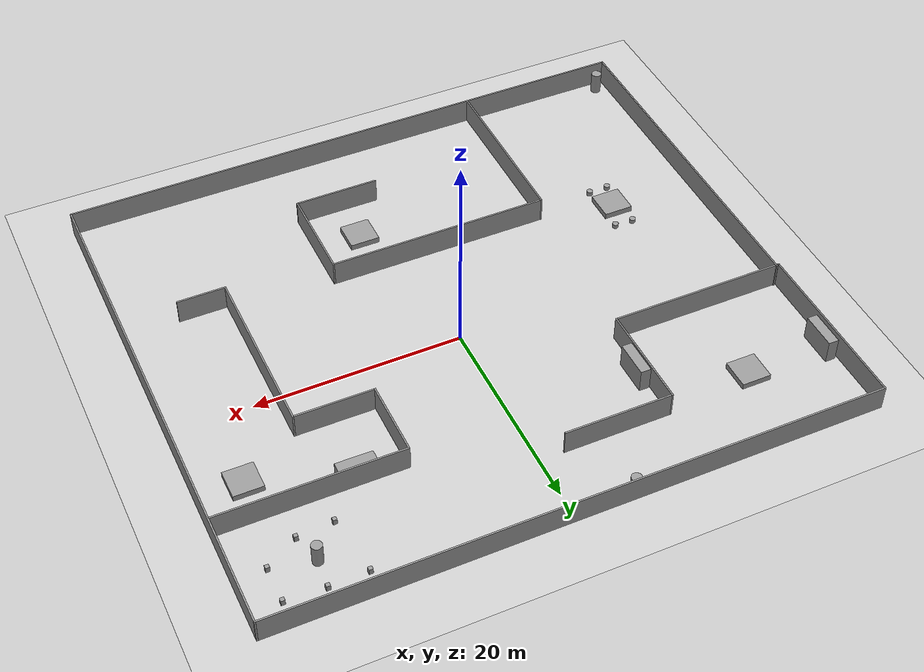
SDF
<sdf version="1.7">
 <world name="default">
  <light name="sun" type="directional">
   <pose>0 0 10 0 -0 0</pose>
   <diffuse>0.8 0.8 0.8 1</diffuse>
   <specular>0.2 0.2 0.2 1</specular>
   <attenuation>
    <range>1000</range>
    <constant>0.9</constant>
    <linear>0.01</linear>
    <quadratic>0.001</quadratic>
   </attenuation>
   <direction>-0.5 0.1 -0.9</direction>
   <spot><inner_angle>0</inner_angle><outer_angle>0</outer_angle><falloff>0</falloff></spot>
  </light>
  <model name="ground_plane">
   <static>1</static>
   <link name="link">
    <collision name="collision">
     <geometry><plane><normal>0 0 1</normal><size>100 100</size></plane></geometry>
     <surface><friction><ode><mu>100</mu><mu2>50</mu2></ode></friction></surface>
    </collision>
    <visual name="visual">
     <cast_shadows>0</cast_shadows>
     <geometry><plane><normal>0 0 1</normal><size>100 100</size></plane></geometry>
     <material>
      <script><uri>file://media/materials/scripts/gazebo.material</uri><name>Gazebo/Grey</name></script>
     </material>
    </visual>
   </link>
  </model>
  <gravity>0 0 -9.8</gravity>
  <magnetic_field>6e-06 2.3e-05 -4.2e-05</magnetic_field>
  <atmosphere type="adiabatic"/>
  <physics type="ode">
   <max_step_size>0.001</max_step_size>
   <real_time_factor>1</real_time_factor>
   <real_time_update_rate>1000</real_time_update_rate>
  </physics>
  <scene><ambient>0.4 0.4 0.4 1</ambient><background>0.7 0.7 0.7 1</background><shadows>1</shadows></scene>
  <audio><device>default</device></audio>
  <spherical_coordinates>
   <surface_model>EARTH_WGS84</surface_model>
   <latitude_deg>0</latitude_deg>
   <longitude_deg>0</longitude_deg>
   <elevation>0</elevation>
   <heading_deg>0</heading_deg>
  </spherical_coordinates>
  <model name="3room">
   <pose>-0.940497 -2.71862 0 0 -0 0</pose>
   <link name="Wall_0">
    <collision name="Wall_0_Collision">
     <geometry><box><size>34.5 0.15 2.5</size></box></geometry>
     <pose>0 0 1.25 0 -0 0</pose>
    </collision>
    <visual name="Wall_0_Visual">
     <pose>0 0 1.25 0 -0 0</pose>
     <geometry><box><size>34.5 0.15 2.5</size></box></geometry>
     <material>
      <script><uri>file://media/materials/scripts/gazebo.material</uri><name>Gazebo/Grey</name></script>
      <ambient>1 1 1 1</ambient>
     </material>
     <meta><layer>0</layer></meta>
    </visual>
    <pose>-28.675 -8.5 0 0 -0 -1.5708</pose>
   </link>
   <link name="Wall_1">
    <collision name="Wall_1_Collision">
     <geometry><box><size>57.75 0.15 2.5</size></box></geometry>
     <pose>0 0 1.25 0 -0 0</pose>
    </collision>
    <visual name="Wall_1_Visual">
     <pose>0 0 1.25 0 -0 0</pose>
     <geometry><box><size>57.75 0.15 2.5</size></box></geometry>
     <material>
      <script><uri>file://media/materials/scripts/gazebo.material</uri><name>Gazebo/Grey</name></script>
      <ambient>1 1 1 1</ambient>
     </material>
     <meta><layer>0</layer></meta>
    </visual>
    <pose>0.124999 -25.675 0 0 -0 0</pose>
   </link>
   <link name="Wall_10">
    <collision name="Wall_10_Collision">
     <geometry><box><size>21.75 0.15 2.5</size></box></geometry>
     <pose>0 0 1.25 0 -0 0</pose>
    </collision>
    <visual name="Wall_10_Visual">
     <pose>0 0 1.25 0 -0 0</pose>
     <geometry><box><size>21.75 0.15 2.5</size></box></geometry>
     <material>
      <script><uri>file://media/materials/scripts/gazebo.material</uri><name>Gazebo/Grey</name></script>
      <ambient>1 1 1 1</ambient>
     </material>
     <meta><layer>0</layer></meta>
    </visual>
    <pose>-2.14326 -8.72463 0 0 -0 0</pose>
   </link>
   <link name="Wall_11">
    <collision name="Wall_11_Collision">
     <geometry><box><size>9.5 0.15 2.5</size></box></geometry>
     <pose>0 0 1.25 0 -0 0</pose>
    </collision>
    <visual name="Wall_11_Visual">
     <pose>0 0 1.25 0 -0 0</pose>
     <geometry><box><size>9.5 0.15 2.5</size></box></geometry>
     <material>
      <script><uri>file://media/materials/scripts/gazebo.material</uri><name>Gazebo/Grey</name></script>
      <ambient>1 1 1 1</ambient>
     </material>
     <meta><layer>0</layer></meta>
    </visual>
    <pose>8.65674 -13.3996 0 0 -0 -1.5708</pose>
   </link>
   <link name="Wall_12">
    <collision name="Wall_12_Collision">
     <geometry><box><size>8.25 0.15 2.5</size></box></geometry>
     <pose>0 0 1.25 0 -0 0</pose>
    </collision>
    <visual name="Wall_12_Visual">
     <pose>0 0 1.25 0 -0 0</pose>
     <geometry><box><size>8.25 0.15 2.5</size></box></geometry>
     <material>
      <script><uri>file://media/materials/scripts/gazebo.material</uri><name>Gazebo/Grey</name></script>
      <ambient>1 1 1 1</ambient>
     </material>
     <meta><layer>0</layer></meta>
    </visual>
    <pose>4.60674 -18.0746 0 0 -0 3.14159</pose>
   </link>
   <link name="Wall_14">
    <collision name="Wall_14_Collision">
     <geometry><box><size>17.75 0.15 2.5</size></box></geometry>
     <pose>0 0 1.25 0 -0 0</pose>
    </collision>
    <visual name="Wall_14_Visual">
     <pose>0 0 1.25 0 -0 0</pose>
     <geometry><box><size>17.75 0.15 2.5</size></box></geometry>
     <material>
      <script><uri>file://media/materials/scripts/gazebo.material</uri><name>Gazebo/Grey</name></script>
      <ambient>1 1 1 1</ambient>
     </material>
     <meta><layer>0</layer></meta>
    </visual>
    <pose>20.0104 14.6725 0 0 -0 3.14159</pose>
   </link>
   <link name="Wall_15">
    <collision name="Wall_15_Collision">
     <geometry><box><size>7.5 0.15 2.5</size></box></geometry>
     <pose>0 0 1.25 0 -0 0</pose>
    </collision>
    <visual name="Wall_15_Visual">
     <pose>0 0 1.25 0 -0 0</pose>
     <geometry><box><size>7.5 0.15 2.5</size></box></geometry>
     <material>
      <script><uri>file://media/materials/scripts/gazebo.material</uri><name>Gazebo/Grey</name></script>
      <ambient>1 1 1 1</ambient>
     </material>
     <meta><layer>0</layer></meta>
    </visual>
    <pose>11.2104 10.9975 0 0 -0 -1.5708</pose>
   </link>
   <link name="Wall_16">
    <collision name="Wall_16_Collision">
     <geometry><box><size>7.75 0.15 2.5</size></box></geometry>
     <pose>0 0 1.25 0 -0 0</pose>
    </collision>
    <visual name="Wall_16_Visual">
     <pose>0 0 1.25 0 -0 0</pose>
     <geometry><box><size>7.75 0.15 2.5</size></box></geometry>
     <material>
      <script><uri>file://media/materials/scripts/gazebo.material</uri><name>Gazebo/Grey</name></script>
      <ambient>1 1 1 1</ambient>
     </material>
     <meta><layer>0</layer></meta>
    </visual>
    <pose>15.0104 7.32249 0 0 -0 0</pose>
   </link>
   <link name="Wall_17">
    <collision name="Wall_17_Collision">
     <geometry><box><size>17.5 0.15 2.5</size></box></geometry>
     <pose>0 0 1.25 0 -0 0</pose>
    </collision>
    <visual name="Wall_17_Visual">
     <pose>0 0 1.25 0 -0 0</pose>
     <geometry><box><size>17.5 0.15 2.5</size></box></geometry>
     <material>
      <script><uri>file://media/materials/scripts/gazebo.material</uri><name>Gazebo/Grey</name></script>
      <ambient>1 1 1 1</ambient>
     </material>
     <meta><layer>0</layer></meta>
    </visual>
    <pose>18.8104 -1.3525 0 0 -0 -1.5708</pose>
   </link>
   <link name="Wall_18">
    <collision name="Wall_18_Collision">
     <geometry><box><size>4.75 0.15 2.5</size></box></geometry>
     <pose>0 0 1.25 0 -0 0</pose>
    </collision>
    <visual name="Wall_18_Visual">
     <pose>0 0 1.25 0 -0 0</pose>
     <geometry><box><size>4.75 0.15 2.5</size></box></geometry>
     <material>
      <script><uri>file://media/materials/scripts/gazebo.material</uri><name>Gazebo/Grey</name></script>
      <ambient>1 1 1 1</ambient>
     </material>
     <meta><layer>0</layer></meta>
    </visual>
    <pose>21.1104 -10.0275 0 0 -0 0</pose>
   </link>
   <link name="Wall_2">
    <collision name="Wall_2_Collision">
     <geometry><box><size>51.5 0.15 2.5</size></box></geometry>
     <pose>0 0 1.25 0 -0 0</pose>
    </collision>
    <visual name="Wall_2_Visual">
     <pose>0 0 1.25 0 -0 0</pose>
     <geometry><box><size>51.5 0.15 2.5</size></box></geometry>
     <material>
      <script><uri>file://media/materials/scripts/gazebo.material</uri><name>Gazebo/Grey</name></script>
      <ambient>1 1 1 1</ambient>
     </material>
     <meta><layer>0</layer></meta>
    </visual>
    <pose>28.925 0 0 0 -0 1.5708</pose>
   </link>
   <link name="Wall_3">
    <collision name="Wall_3_Collision">
     <geometry><box><size>58 0.15 2.5</size></box></geometry>
     <pose>0 0 1.25 0 -0 0</pose>
    </collision>
    <visual name="Wall_3_Visual">
     <pose>0 0 1.25 0 -0 0</pose>
     <geometry><box><size>58 0.15 2.5</size></box></geometry>
     <material>
      <script><uri>file://media/materials/scripts/gazebo.material</uri><name>Gazebo/Grey</name></script>
      <ambient>1 1 1 1</ambient>
     </material>
     <meta><layer>0</layer></meta>
    </visual>
    <pose>-1e-06 25.675 0 0 -0 3.14159</pose>
   </link>
   <link name="Wall_4">
    <collision name="Wall_4_Collision">
     <geometry><box><size>17.25 0.15 2.5</size></box></geometry>
     <pose>0 0 1.25 0 -0 0</pose>
    </collision>
    <visual name="Wall_4_Visual">
     <pose>0 0 1.25 0 -0 0</pose>
     <geometry><box><size>17.25 0.15 2.5</size></box></geometry>
     <material>
      <script><uri>file://media/materials/scripts/gazebo.material</uri><name>Gazebo/Grey</name></script>
      <ambient>1 1 1 1</ambient>
     </material>
     <meta><layer>0</layer></meta>
    </visual>
    <pose>-28.925 17.125 0 0 -0 -1.5708</pose>
   </link>
   <link name="Wall_5">
    <collision name="Wall_5_Collision">
     <geometry><box><size>17.25 0.15 2.5</size></box></geometry>
     <pose>0 0 1.25 0 -0 0</pose>
    </collision>
    <visual name="Wall_5_Visual">
     <pose>0 0 1.25 0 -0 0</pose>
     <geometry><box><size>17.25 0.15 2.5</size></box></geometry>
     <material>
      <script><uri>file://media/materials/scripts/gazebo.material</uri><name>Gazebo/Grey</name></script>
      <ambient>1 1 1 1</ambient>
     </material>
     <meta><layer>0</layer></meta>
    </visual>
    <pose>-20.375 8.575 0 0 -0 0</pose>
   </link>
   <link name="Wall_6">
    <collision name="Wall_6_Collision">
     <geometry><box><size>10.25 0.15 2.5</size></box></geometry>
     <pose>0 0 1.25 0 -0 0</pose>
    </collision>
    <visual name="Wall_6_Visual">
     <pose>0 0 1.25 0 -0 0</pose>
     <geometry><box><size>10.25 0.15 2.5</size></box></geometry>
     <material>
      <script><uri>file://media/materials/scripts/gazebo.material</uri><name>Gazebo/Grey</name></script>
      <ambient>1 1 1 1</ambient>
     </material>
     <meta><layer>0</layer></meta>
    </visual>
    <pose>-11.825 13.625 0 0 -0 1.5708</pose>
   </link>
   <link name="Wall_7">
    <collision name="Wall_7_Collision">
     <geometry><box><size>10.5 0.15 2.5</size></box></geometry>
     <pose>0 0 1.25 0 -0 0</pose>
    </collision>
    <visual name="Wall_7_Visual">
     <pose>0 0 1.25 0 -0 0</pose>
     <geometry><box><size>10.5 0.15 2.5</size></box></geometry>
     <material>
      <script><uri>file://media/materials/scripts/gazebo.material</uri><name>Gazebo/Grey</name></script>
      <ambient>1 1 1 1</ambient>
     </material>
     <meta><layer>0</layer></meta>
    </visual>
    <pose>-6.65 18.675 0 0 -0 0</pose>
   </link>
   <link name="Wall_9">
    <collision name="Wall_9_Collision">
     <geometry><box><size>17 0.15 2.5</size></box></geometry>
     <pose>0 0 1.25 0 -0 0</pose>
    </collision>
    <visual name="Wall_9_Visual">
     <pose>0 0 1.25 0 -0 0</pose>
     <geometry><box><size>17 0.15 2.5</size></box></geometry>
     <material>
      <script><uri>file://media/materials/scripts/gazebo.material</uri><name>Gazebo/Grey</name></script>
      <ambient>1 1 1 1</ambient>
     </material>
     <meta><layer>0</layer></meta>
    </visual>
    <pose>-12.9433 -17.1496 0 0 -0 1.5708</pose>
   </link>
   <static>1</static>
  </model>
  <model name="square_box">
   <link name="link_0">
    <inertial>
     <mass>8.22012</mass>
     <inertia><ixx>6.36655</ixx><ixy>0</ixy><ixz>0</ixz><iyy>6.26556</iyy><iyz>0</iyz><izz>11.2621</izz></inertia>
    </inertial>
    <pose>2e-06 -4e-06 0 0 -0 0</pose>
    <visual name="visual">
     <geometry><box><size>2.85424 2.87995 1</size></box></geometry>
     <material>
      <lighting>1</lighting>
      <script><uri>file://media/materials/scripts/gazebo.material</uri><name>Gazebo/Grey</name></script>
      <shader type="pixel"/>
     </material>
    </visual>
    <collision name="collision">
     <geometry><box><size>2.85424 2.87995 1</size></box></geometry>
     <surface>
      <friction>
       <ode><mu>1</mu><mu2>1</mu2><fdir1>0 0 0</fdir1><slip1>0</slip1><slip2>0</slip2></ode>
       <torsional>
        <coefficient>1</coefficient>
        <patch_radius>0</patch_radius>
        <surface_radius>0</surface_radius>
        <use_patch_radius>1</use_patch_radius>
        <ode><slip>0</slip></ode>
       </torsional>
      </friction>
      <bounce><restitution_coefficient>0</restitution_coefficient><threshold>1e+06</threshold></bounce>
      <contact>
       <collide_without_contact>0</collide_without_contact>
       <collide_without_contact_bitmask>1</collide_without_contact_bitmask>
       <collide_bitmask>1</collide_bitmask>
       <ode>
        <soft_cfm>0</soft_cfm>
        <soft_erp>0.2</soft_erp>
        <kp>1e+13</kp>
        <kd>1</kd>
        <max_vel>0.01</max_vel>
        <min_depth>0</min_depth>
       </ode>
       <bullet>
        <split_impulse>1</split_impulse>
        <split_impulse_penetration_threshold>-0.01</split_impulse_penetration_threshold>
        <soft_cfm>0</soft_cfm>
        <soft_erp>0.2</soft_erp>
        <kp>1e+13</kp>
        <kd>1</kd>
       </bullet>
      </contact>
     </surface>
    </collision>
   </link>
   <static>0</static>
   <pose>3.08811 -16.5201 0 0 -0 0</pose>
  </model>
  <model name="square_box_0">
   <link name="link_0">
    <inertial>
     <mass>8.22012</mass>
     <inertia><ixx>6.36655</ixx><ixy>0</ixy><ixz>0</ixz><iyy>6.26556</iyy><iyz>0</iyz><izz>11.2621</izz></inertia>
    </inertial>
    <pose>2e-06 -4e-06 0 0 -0 0</pose>
    <visual name="visual">
     <geometry><box><size>2.85424 2.87995 1</size></box></geometry>
     <material>
      <lighting>1</lighting>
      <script><uri>file://media/materials/scripts/gazebo.material</uri><name>Gazebo/Grey</name></script>
      <shader type="pixel"/>
     </material>
    </visual>
    <collision name="collision">
     <geometry><box><size>2.85424 2.87995 1</size></box></geometry>
     <surface>
      <friction>
       <ode><mu>1</mu><mu2>1</mu2><fdir1>0 0 0</fdir1><slip1>0</slip1><slip2>0</slip2></ode>
       <torsional>
        <coefficient>1</coefficient>
        <patch_radius>0</patch_radius>
        <surface_radius>0</surface_radius>
        <use_patch_radius>1</use_patch_radius>
        <ode><slip>0</slip></ode>
       </torsional>
      </friction>
      <bounce><restitution_coefficient>0</restitution_coefficient><threshold>1e+06</threshold></bounce>
      <contact>
       <collide_without_contact>0</collide_without_contact>
       <collide_without_contact_bitmask>1</collide_without_contact_bitmask>
       <collide_bitmask>1</collide_bitmask>
       <ode>
        <soft_cfm>0</soft_cfm>
        <soft_erp>0.2</soft_erp>
        <kp>1e+13</kp>
        <kd>1</kd>
        <max_vel>0.01</max_vel>
        <min_depth>0</min_depth>
       </ode>
       <bullet>
        <split_impulse>1</split_impulse>
        <split_impulse_penetration_threshold>-0.01</split_impulse_penetration_threshold>
        <soft_cfm>0</soft_cfm>
        <soft_erp>0.2</soft_erp>
        <kp>1e+13</kp>
        <kd>1</kd>
       </bullet>
      </contact>
     </surface>
    </collision>
   </link>
   <static>0</static>
   <pose>-21.4986 14.6311 0 0 -0 0</pose>
  </model>
  <model name="square_box_1">
   <link name="link_0">
    <inertial>
     <mass>8.22012</mass>
     <inertia><ixx>6.36655</ixx><ixy>0</ixy><ixz>0</ixz><iyy>6.26556</iyy><iyz>0</iyz><izz>11.2621</izz></inertia>
    </inertial>
    <pose>2e-06 -4e-06 0 0 -0 0</pose>
    <visual name="visual">
     <geometry><box><size>2.85424 2.87995 1</size></box></geometry>
     <material>
      <lighting>1</lighting>
      <script><uri>file://media/materials/scripts/gazebo.material</uri><name>Gazebo/Grey</name></script>
      <shader type="pixel"/>
     </material>
    </visual>
    <collision name="collision">
     <geometry><box><size>2.85424 2.87995 1</size></box></geometry>
     <surface>
      <friction>
       <ode><mu>1</mu><mu2>1</mu2><fdir1>0 0 0</fdir1><slip1>0</slip1><slip2>0</slip2></ode>
       <torsional>
        <coefficient>1</coefficient>
        <patch_radius>0</patch_radius>
        <surface_radius>0</surface_radius>
        <use_patch_radius>1</use_patch_radius>
        <ode><slip>0</slip></ode>
       </torsional>
      </friction>
      <bounce><restitution_coefficient>0</restitution_coefficient><threshold>1e+06</threshold></bounce>
      <contact>
       <collide_without_contact>0</collide_without_contact>
       <collide_without_contact_bitmask>1</collide_without_contact_bitmask>
       <collide_bitmask>1</collide_bitmask>
       <ode>
        <soft_cfm>0</soft_cfm>
        <soft_erp>0.2</soft_erp>
        <kp>1e+13</kp>
        <kd>1</kd>
        <max_vel>0.01</max_vel>
        <min_depth>0</min_depth>
       </ode>
       <bullet>
        <split_impulse>1</split_impulse>
        <split_impulse_penetration_threshold>-0.01</split_impulse_penetration_threshold>
        <soft_cfm>0</soft_cfm>
        <soft_erp>0.2</soft_erp>
        <kp>1e+13</kp>
        <kd>1</kd>
       </bullet>
      </contact>
     </surface>
    </collision>
   </link>
   <static>0</static>
   <pose>23.6451 7.70959 0 0 -0 0</pose>
  </model>
  <model name="cupboard">
   <link name="link_2">
    <inertial>
     <mass>16.0018</mass>
     <inertia><ixx>44.0904</ixx><ixy>0</ixy><ixz>0</ixz><iyy>28.9167</iyy><iyz>0</iyz><izz>17.8407</izz></inertia>
    </inertial>
    <pose>-1e-06 1e-06 0 0 -0 0</pose>
    <visual name="visual">
     <geometry><box><size>1 3.51838 4.54807</size></box></geometry>
     <material>
      <lighting>1</lighting>
      <script><uri>file://media/materials/scripts/gazebo.material</uri><name>Gazebo/Grey</name></script>
      <shader type="pixel"/>
     </material>
    </visual>
    <collision name="collision">
     <geometry><box><size>1 3.51838 4.54807</size></box></geometry>
     <surface>
      <friction>
       <ode><mu>1</mu><mu2>1</mu2><fdir1>0 0 0</fdir1><slip1>0</slip1><slip2>0</slip2></ode>
       <torsional>
        <coefficient>1</coefficient>
        <patch_radius>0</patch_radius>
        <surface_radius>0</surface_radius>
        <use_patch_radius>1</use_patch_radius>
        <ode><slip>0</slip></ode>
       </torsional>
      </friction>
      <bounce><restitution_coefficient>0</restitution_coefficient><threshold>1e+06</threshold></bounce>
      <contact>
       <collide_without_contact>0</collide_without_contact>
       <collide_without_contact_bitmask>1</collide_without_contact_bitmask>
       <collide_bitmask>1</collide_bitmask>
       <ode>
        <soft_cfm>0</soft_cfm>
        <soft_erp>0.2</soft_erp>
        <kp>1e+13</kp>
        <kd>1</kd>
        <max_vel>0.01</max_vel>
        <min_depth>0</min_depth>
       </ode>
       <bullet>
        <split_impulse>1</split_impulse>
        <split_impulse_penetration_threshold>-0.01</split_impulse_penetration_threshold>
        <soft_cfm>0</soft_cfm>
        <soft_erp>0.2</soft_erp>
        <kp>1e+13</kp>
        <kd>1</kd>
       </bullet>
      </contact>
     </surface>
    </collision>
   </link>
   <static>0</static>
   <pose>-29.0786 14.5496 0 0 -0 0</pose>
  </model>
  <model name="stand">
   <link name="link_4">
    <inertial>
     <mass>0.138887</mass>
     <inertia>
      <ixx>0.0130983</ixx>
      <ixy>0</ixy>
      <ixz>0</ixz>
      <iyy>0.0132692</iyy>
      <iyz>0</iyz>
      <izz>0.0032197</izz>
     </inertia>
    </inertial>
    <pose>1e-06 5e-06 0 0 -0 0</pose>
    <visual name="visual">
     <geometry><box><size>0.382719 0.362923 1</size></box></geometry>
     <material>
      <lighting>1</lighting>
      <script><uri>file://media/materials/scripts/gazebo.material</uri><name>Gazebo/Grey</name></script>
      <shader type="pixel"/>
     </material>
    </visual>
    <collision name="collision">
     <geometry><box><size>0.382719 0.362923 1</size></box></geometry>
     <surface>
      <friction>
       <ode><mu>1</mu><mu2>1</mu2><fdir1>0 0 0</fdir1><slip1>0</slip1><slip2>0</slip2></ode>
       <torsional>
        <coefficient>1</coefficient>
        <patch_radius>0</patch_radius>
        <surface_radius>0</surface_radius>
        <use_patch_radius>1</use_patch_radius>
        <ode><slip>0</slip></ode>
       </torsional>
      </friction>
      <bounce><restitution_coefficient>0</restitution_coefficient><threshold>1e+06</threshold></bounce>
      <contact>
       <collide_without_contact>0</collide_without_contact>
       <collide_without_contact_bitmask>1</collide_without_contact_bitmask>
       <collide_bitmask>1</collide_bitmask>
       <ode>
        <soft_cfm>0</soft_cfm>
        <soft_erp>0.2</soft_erp>
        <kp>1e+13</kp>
        <kd>1</kd>
        <max_vel>0.01</max_vel>
        <min_depth>0</min_depth>
       </ode>
       <bullet>
        <split_impulse>1</split_impulse>
        <split_impulse_penetration_threshold>-0.01</split_impulse_penetration_threshold>
        <soft_cfm>0</soft_cfm>
        <soft_erp>0.2</soft_erp>
        <kp>1e+13</kp>
        <kd>1</kd>
       </bullet>
      </contact>
     </surface>
    </collision>
   </link>
   <static>0</static>
   <pose>24.9549 20.502 0 0 -0 0</pose>
  </model>
  <model name="stand_0">
   <link name="link_4">
    <inertial>
     <mass>0.138887</mass>
     <inertia>
      <ixx>0.0130983</ixx>
      <ixy>0</ixy>
      <ixz>0</ixz>
      <iyy>0.0132692</iyy>
      <iyz>0</iyz>
      <izz>0.0032197</izz>
     </inertia>
    </inertial>
    <pose>1e-06 5e-06 0 0 -0 0</pose>
    <visual name="visual">
     <geometry><box><size>0.382719 0.362923 1</size></box></geometry>
     <material>
      <lighting>1</lighting>
      <script><uri>file://media/materials/scripts/gazebo.material</uri><name>Gazebo/Grey</name></script>
      <shader type="pixel"/>
     </material>
    </visual>
    <collision name="collision">
     <geometry><box><size>0.382719 0.362923 1</size></box></geometry>
     <surface>
      <friction>
       <ode><mu>1</mu><mu2>1</mu2><fdir1>0 0 0</fdir1><slip1>0</slip1><slip2>0</slip2></ode>
       <torsional>
        <coefficient>1</coefficient>
        <patch_radius>0</patch_radius>
        <surface_radius>0</surface_radius>
        <use_patch_radius>1</use_patch_radius>
        <ode><slip>0</slip></ode>
       </torsional>
      </friction>
      <bounce><restitution_coefficient>0</restitution_coefficient><threshold>1e+06</threshold></bounce>
      <contact>
       <collide_without_contact>0</collide_without_contact>
       <collide_without_contact_bitmask>1</collide_without_contact_bitmask>
       <collide_bitmask>1</collide_bitmask>
       <ode>
        <soft_cfm>0</soft_cfm>
        <soft_erp>0.2</soft_erp>
        <kp>1e+13</kp>
        <kd>1</kd>
        <max_vel>0.01</max_vel>
        <min_depth>0</min_depth>
       </ode>
       <bullet>
        <split_impulse>1</split_impulse>
        <split_impulse_penetration_threshold>-0.01</split_impulse_penetration_threshold>
        <soft_cfm>0</soft_cfm>
        <soft_erp>0.2</soft_erp>
        <kp>1e+13</kp>
        <kd>1</kd>
       </bullet>
      </contact>
     </surface>
    </collision>
   </link>
   <static>0</static>
   <pose>24.9489 16.9917 0 0 -0 0</pose>
  </model>
  <model name="stand_1">
   <link name="link_4">
    <inertial>
     <mass>0.138887</mass>
     <inertia>
      <ixx>0.0130983</ixx>
      <ixy>0</ixy>
      <ixz>0</ixz>
      <iyy>0.0132692</iyy>
      <iyz>0</iyz>
      <izz>0.0032197</izz>
     </inertia>
    </inertial>
    <pose>1e-06 5e-06 0 0 -0 0</pose>
    <visual name="visual">
     <geometry><box><size>0.382719 0.362923 1</size></box></geometry>
     <material>
      <lighting>1</lighting>
      <script><uri>file://media/materials/scripts/gazebo.material</uri><name>Gazebo/Grey</name></script>
      <shader type="pixel"/>
     </material>
    </visual>
    <collision name="collision">
     <geometry><box><size>0.382719 0.362923 1</size></box></geometry>
     <surface>
      <friction>
       <ode><mu>1</mu><mu2>1</mu2><fdir1>0 0 0</fdir1><slip1>0</slip1><slip2>0</slip2></ode>
       <torsional>
        <coefficient>1</coefficient>
        <patch_radius>0</patch_radius>
        <surface_radius>0</surface_radius>
        <use_patch_radius>1</use_patch_radius>
        <ode><slip>0</slip></ode>
       </torsional>
      </friction>
      <bounce><restitution_coefficient>0</restitution_coefficient><threshold>1e+06</threshold></bounce>
      <contact>
       <collide_without_contact>0</collide_without_contact>
       <collide_without_contact_bitmask>1</collide_without_contact_bitmask>
       <collide_bitmask>1</collide_bitmask>
       <ode>
        <soft_cfm>0</soft_cfm>
        <soft_erp>0.2</soft_erp>
        <kp>1e+13</kp>
        <kd>1</kd>
        <max_vel>0.01</max_vel>
        <min_depth>0</min_depth>
       </ode>
       <bullet>
        <split_impulse>1</split_impulse>
        <split_impulse_penetration_threshold>-0.01</split_impulse_penetration_threshold>
        <soft_cfm>0</soft_cfm>
        <soft_erp>0.2</soft_erp>
        <kp>1e+13</kp>
        <kd>1</kd>
       </bullet>
      </contact>
     </surface>
    </collision>
   </link>
   <static>0</static>
   <pose>21.7528 15.0473 0 0 -0 0</pose>
  </model>
  <model name="stand_2">
   <link name="link_4">
    <inertial>
     <mass>0.138887</mass>
     <inertia>
      <ixx>0.0130983</ixx>
      <ixy>0</ixy>
      <ixz>0</ixz>
      <iyy>0.0132692</iyy>
      <iyz>0</iyz>
      <izz>0.0032197</izz>
     </inertia>
    </inertial>
    <pose>1e-06 5e-06 0 0 -0 0</pose>
    <visual name="visual">
     <geometry><box><size>0.382719 0.362923 1</size></box></geometry>
     <material>
      <lighting>1</lighting>
      <script><uri>file://media/materials/scripts/gazebo.material</uri><name>Gazebo/Grey</name></script>
      <shader type="pixel"/>
     </material>
    </visual>
    <collision name="collision">
     <geometry><box><size>0.382719 0.362923 1</size></box></geometry>
     <surface>
      <friction>
       <ode><mu>1</mu><mu2>1</mu2><fdir1>0 0 0</fdir1><slip1>0</slip1><slip2>0</slip2></ode>
       <torsional>
        <coefficient>1</coefficient>
        <patch_radius>0</patch_radius>
        <surface_radius>0</surface_radius>
        <use_patch_radius>1</use_patch_radius>
        <ode><slip>0</slip></ode>
       </torsional>
      </friction>
      <bounce><restitution_coefficient>0</restitution_coefficient><threshold>1e+06</threshold></bounce>
      <contact>
       <collide_without_contact>0</collide_without_contact>
       <collide_without_contact_bitmask>1</collide_without_contact_bitmask>
       <collide_bitmask>1</collide_bitmask>
       <ode>
        <soft_cfm>0</soft_cfm>
        <soft_erp>0.2</soft_erp>
        <kp>1e+13</kp>
        <kd>1</kd>
        <max_vel>0.01</max_vel>
        <min_depth>0</min_depth>
       </ode>
       <bullet>
        <split_impulse>1</split_impulse>
        <split_impulse_penetration_threshold>-0.01</split_impulse_penetration_threshold>
        <soft_cfm>0</soft_cfm>
        <soft_erp>0.2</soft_erp>
        <kp>1e+13</kp>
        <kd>1</kd>
       </bullet>
      </contact>
     </surface>
    </collision>
   </link>
   <static>0</static>
   <pose>18.2341 14.776 0 0 -0 0</pose>
  </model>
  <model name="stand_3">
   <link name="link_4">
    <inertial>
     <mass>0.138887</mass>
     <inertia>
      <ixx>0.0130983</ixx>
      <ixy>0</ixy>
      <ixz>0</ixz>
      <iyy>0.0132692</iyy>
      <iyz>0</iyz>
      <izz>0.0032197</izz>
     </inertia>
    </inertial>
    <pose>1e-06 5e-06 0 0 -0 0</pose>
    <visual name="visual">
     <geometry><box><size>0.382719 0.362923 1</size></box></geometry>
     <material>
      <lighting>1</lighting>
      <script><uri>file://media/materials/scripts/gazebo.material</uri><name>Gazebo/Grey</name></script>
      <shader type="pixel"/>
     </material>
    </visual>
    <collision name="collision">
     <geometry><box><size>0.382719 0.362923 1</size></box></geometry>
     <surface>
      <friction>
       <ode><mu>1</mu><mu2>1</mu2><fdir1>0 0 0</fdir1><slip1>0</slip1><slip2>0</slip2></ode>
       <torsional>
        <coefficient>1</coefficient>
        <patch_radius>0</patch_radius>
        <surface_radius>0</surface_radius>
        <use_patch_radius>1</use_patch_radius>
        <ode><slip>0</slip></ode>
       </torsional>
      </friction>
      <bounce><restitution_coefficient>0</restitution_coefficient><threshold>1e+06</threshold></bounce>
      <contact>
       <collide_without_contact>0</collide_without_contact>
       <collide_without_contact_bitmask>1</collide_without_contact_bitmask>
       <collide_bitmask>1</collide_bitmask>
       <ode>
        <soft_cfm>0</soft_cfm>
        <soft_erp>0.2</soft_erp>
        <kp>1e+13</kp>
        <kd>1</kd>
        <max_vel>0.01</max_vel>
        <min_depth>0</min_depth>
       </ode>
       <bullet>
        <split_impulse>1</split_impulse>
        <split_impulse_penetration_threshold>-0.01</split_impulse_penetration_threshold>
        <soft_cfm>0</soft_cfm>
        <soft_erp>0.2</soft_erp>
        <kp>1e+13</kp>
        <kd>1</kd>
       </bullet>
      </contact>
     </surface>
    </collision>
   </link>
   <static>0</static>
   <pose>21.1721 20.6995 0 0 -0 0</pose>
  </model>
  <model name="stand_4">
   <link name="link_4">
    <inertial>
     <mass>0.138887</mass>
     <inertia>
      <ixx>0.0130983</ixx>
      <ixy>0</ixy>
      <ixz>0</ixz>
      <iyy>0.0132692</iyy>
      <iyz>0</iyz>
      <izz>0.0032197</izz>
     </inertia>
    </inertial>
    <pose>1e-06 5e-06 0 0 -0 0</pose>
    <visual name="visual">
     <geometry><box><size>0.382719 0.362923 1</size></box></geometry>
     <material>
      <lighting>1</lighting>
      <script><uri>file://media/materials/scripts/gazebo.material</uri><name>Gazebo/Grey</name></script>
      <shader type="pixel"/>
     </material>
    </visual>
    <collision name="collision">
     <geometry><box><size>0.382719 0.362923 1</size></box></geometry>
     <surface>
      <friction>
       <ode><mu>1</mu><mu2>1</mu2><fdir1>0 0 0</fdir1><slip1>0</slip1><slip2>0</slip2></ode>
       <torsional>
        <coefficient>1</coefficient>
        <patch_radius>0</patch_radius>
        <surface_radius>0</surface_radius>
        <use_patch_radius>1</use_patch_radius>
        <ode><slip>0</slip></ode>
       </torsional>
      </friction>
      <bounce><restitution_coefficient>0</restitution_coefficient><threshold>1e+06</threshold></bounce>
      <contact>
       <collide_without_contact>0</collide_without_contact>
       <collide_without_contact_bitmask>1</collide_without_contact_bitmask>
       <collide_bitmask>1</collide_bitmask>
       <ode>
        <soft_cfm>0</soft_cfm>
        <soft_erp>0.2</soft_erp>
        <kp>1e+13</kp>
        <kd>1</kd>
        <max_vel>0.01</max_vel>
        <min_depth>0</min_depth>
       </ode>
       <bullet>
        <split_impulse>1</split_impulse>
        <split_impulse_penetration_threshold>-0.01</split_impulse_penetration_threshold>
        <soft_cfm>0</soft_cfm>
        <soft_erp>0.2</soft_erp>
        <kp>1e+13</kp>
        <kd>1</kd>
       </bullet>
      </contact>
     </surface>
    </collision>
   </link>
   <static>0</static>
   <pose>17.4749 20.6186 0 0 -0 0</pose>
  </model>
  <model name="plant">
   <link name="link_3">
    <inertial>
     <mass>0.255214</mass>
     <inertia>
      <ixx>0.0169283</ixx>
      <ixy>0</ixy>
      <ixz>0</ixz>
      <iyy>0.0169283</iyy>
      <iyz>0</iyz>
      <izz>0.0111414</izz>
     </inertia>
    </inertial>
    <pose>5e-06 -5e-06 0 0 -0 0</pose>
    <visual name="visual">
     <geometry><cylinder><radius>0.295483</radius><length>0.730771</length></cylinder></geometry>
     <material>
      <lighting>1</lighting>
      <script><uri>file://media/materials/scripts/gazebo.material</uri><name>Gazebo/Grey</name></script>
      <shader type="pixel"/>
     </material>
    </visual>
    <collision name="collision">
     <geometry><cylinder><radius>0.295483</radius><length>0.730771</length></cylinder></geometry>
     <surface>
      <friction>
       <ode><mu>1</mu><mu2>1</mu2><fdir1>0 0 0</fdir1><slip1>0</slip1><slip2>0</slip2></ode>
       <torsional>
        <coefficient>1</coefficient>
        <patch_radius>0</patch_radius>
        <surface_radius>0</surface_radius>
        <use_patch_radius>1</use_patch_radius>
        <ode><slip>0</slip></ode>
       </torsional>
      </friction>
      <bounce><restitution_coefficient>0</restitution_coefficient><threshold>1e+06</threshold></bounce>
      <contact>
       <collide_without_contact>0</collide_without_contact>
       <collide_without_contact_bitmask>1</collide_without_contact_bitmask>
       <collide_bitmask>1</collide_bitmask>
       <ode>
        <soft_cfm>0</soft_cfm>
        <soft_erp>0.2</soft_erp>
        <kp>1e+13</kp>
        <kd>1</kd>
        <max_vel>0.01</max_vel>
        <min_depth>0</min_depth>
       </ode>
       <bullet>
        <split_impulse>1</split_impulse>
        <split_impulse_penetration_threshold>-0.01</split_impulse_penetration_threshold>
        <soft_cfm>0</soft_cfm>
        <soft_erp>0.2</soft_erp>
        <kp>1e+13</kp>
        <kd>1</kd>
       </bullet>
      </contact>
     </surface>
    </collision>
   </link>
   <static>0</static>
   <pose>-12.2 -13.0138 0 0 -0 0</pose>
  </model>
  <model name="pillar_small">
   <link name="link_1">
    <inertial>
     <mass>4.18108</mass>
     <inertia><ixx>6.35227</ixx><ixy>0</ixy><ixz>0</ixz><iyy>6.35227</iyy><iyz>0</iyz><izz>0.522635</izz></inertia>
    </inertial>
    <pose>2e-06 -0 0 0 -0 0</pose>
    <visual name="visual">
     <geometry><cylinder><radius>0.5</radius><length>4.18108</length></cylinder></geometry>
     <material>
      <lighting>1</lighting>
      <script><uri>file://media/materials/scripts/gazebo.material</uri><name>Gazebo/Grey</name></script>
      <shader type="pixel"/>
     </material>
    </visual>
    <collision name="collision">
     <geometry><cylinder><radius>0.5</radius><length>4.18108</length></cylinder></geometry>
     <surface>
      <friction>
       <ode><mu>1</mu><mu2>1</mu2><fdir1>0 0 0</fdir1><slip1>0</slip1><slip2>0</slip2></ode>
       <torsional>
        <coefficient>1</coefficient>
        <patch_radius>0</patch_radius>
        <surface_radius>0</surface_radius>
        <use_patch_radius>1</use_patch_radius>
        <ode><slip>0</slip></ode>
       </torsional>
      </friction>
      <bounce><restitution_coefficient>0</restitution_coefficient><threshold>1e+06</threshold></bounce>
      <contact>
       <collide_without_contact>0</collide_without_contact>
       <collide_without_contact_bitmask>1</collide_without_contact_bitmask>
       <collide_bitmask>1</collide_bitmask>
       <ode>
        <soft_cfm>0</soft_cfm>
        <soft_erp>0.2</soft_erp>
        <kp>1e+13</kp>
        <kd>1</kd>
        <max_vel>0.01</max_vel>
        <min_depth>0</min_depth>
       </ode>
       <bullet>
        <split_impulse>1</split_impulse>
        <split_impulse_penetration_threshold>-0.01</split_impulse_penetration_threshold>
        <soft_cfm>0</soft_cfm>
        <soft_erp>0.2</soft_erp>
        <kp>1e+13</kp>
        <kd>1</kd>
       </bullet>
      </contact>
     </surface>
    </collision>
   </link>
   <static>0</static>
   <pose>20.9079 17.846 0 0 -0 0</pose>
  </model>
  <model name="pillar_small_0">
   <link name="link_1">
    <inertial>
     <mass>4.18108</mass>
     <inertia><ixx>6.35227</ixx><ixy>0</ixy><ixz>0</ixz><iyy>6.35227</iyy><iyz>0</iyz><izz>0.522635</izz></inertia>
    </inertial>
    <pose>2e-06 -0 0 0 -0 0</pose>
    <visual name="visual">
     <geometry><cylinder><radius>0.5</radius><length>4.18108</length></cylinder></geometry>
     <material>
      <lighting>1</lighting>
      <script><uri>file://media/materials/scripts/gazebo.material</uri><name>Gazebo/Grey</name></script>
      <shader type="pixel"/>
     </material>
    </visual>
    <collision name="collision">
     <geometry><cylinder><radius>0.5</radius><length>4.18108</length></cylinder></geometry>
     <surface>
      <friction>
       <ode><mu>1</mu><mu2>1</mu2><fdir1>0 0 0</fdir1><slip1>0</slip1><slip2>0</slip2></ode>
       <torsional>
        <coefficient>1</coefficient>
        <patch_radius>0</patch_radius>
        <surface_radius>0</surface_radius>
        <use_patch_radius>1</use_patch_radius>
        <ode><slip>0</slip></ode>
       </torsional>
      </friction>
      <bounce><restitution_coefficient>0</restitution_coefficient><threshold>1e+06</threshold></bounce>
      <contact>
       <collide_without_contact>0</collide_without_contact>
       <collide_without_contact_bitmask>1</collide_without_contact_bitmask>
       <collide_bitmask>1</collide_bitmask>
       <ode>
        <soft_cfm>0</soft_cfm>
        <soft_erp>0.2</soft_erp>
        <kp>1e+13</kp>
        <kd>1</kd>
        <max_vel>0.01</max_vel>
        <min_depth>0</min_depth>
       </ode>
       <bullet>
        <split_impulse>1</split_impulse>
        <split_impulse_penetration_threshold>-0.01</split_impulse_penetration_threshold>
        <soft_cfm>0</soft_cfm>
        <soft_erp>0.2</soft_erp>
        <kp>1e+13</kp>
        <kd>1</kd>
       </bullet>
      </contact>
     </surface>
    </collision>
   </link>
   <static>0</static>
   <pose>-28.3957 -27.3395 0 0 -0 0</pose>
  </model>
  <model name="plant_0">
   <link name="link_3">
    <inertial>
     <mass>0.255214</mass>
     <inertia>
      <ixx>0.0169283</ixx>
      <ixy>0</ixy>
      <ixz>0</ixz>
      <iyy>0.0169283</iyy>
      <iyz>0</iyz>
      <izz>0.0111414</izz>
     </inertia>
    </inertial>
    <pose>5e-06 -5e-06 0 0 -0 0</pose>
    <visual name="visual">
     <geometry><cylinder><radius>0.295483</radius><length>0.730771</length></cylinder></geometry>
     <material>
      <lighting>1</lighting>
      <script><uri>file://media/materials/scripts/gazebo.material</uri><name>Gazebo/Grey</name></script>
      <shader type="pixel"/>
     </material>
    </visual>
    <collision name="collision">
     <geometry><cylinder><radius>0.295483</radius><length>0.730771</length></cylinder></geometry>
     <surface>
      <friction>
       <ode><mu>1</mu><mu2>1</mu2><fdir1>0 0 0</fdir1><slip1>0</slip1><slip2>0</slip2></ode>
       <torsional>
        <coefficient>1</coefficient>
        <patch_radius>0</patch_radius>
        <surface_radius>0</surface_radius>
        <use_patch_radius>1</use_patch_radius>
        <ode><slip>0</slip></ode>
       </torsional>
      </friction>
      <bounce><restitution_coefficient>0</restitution_coefficient><threshold>1e+06</threshold></bounce>
      <contact>
       <collide_without_contact>0</collide_without_contact>
       <collide_without_contact_bitmask>1</collide_without_contact_bitmask>
       <collide_bitmask>1</collide_bitmask>
       <ode>
        <soft_cfm>0</soft_cfm>
        <soft_erp>0.2</soft_erp>
        <kp>1e+13</kp>
        <kd>1</kd>
        <max_vel>0.01</max_vel>
        <min_depth>0</min_depth>
       </ode>
       <bullet>
        <split_impulse>1</split_impulse>
        <split_impulse_penetration_threshold>-0.01</split_impulse_penetration_threshold>
        <soft_cfm>0</soft_cfm>
        <soft_erp>0.2</soft_erp>
        <kp>1e+13</kp>
        <kd>1</kd>
       </bullet>
      </contact>
     </surface>
    </collision>
   </link>
   <static>0</static>
   <pose>-28.7847 4.90751 0 0 -0 0</pose>
  </model>
  <model name="cupboard_0">
   <link name="link_2">
    <inertial>
     <mass>16.0018</mass>
     <inertia><ixx>44.0904</ixx><ixy>0</ixy><ixz>0</ixz><iyy>28.9167</iyy><iyz>0</iyz><izz>17.8407</izz></inertia>
    </inertial>
    <pose>-1e-06 1e-06 0 0 -0 0</pose>
    <visual name="visual">
     <geometry><box><size>1 3.51838 4.54807</size></box></geometry>
     <material>
      <lighting>1</lighting>
      <script><uri>file://media/materials/scripts/gazebo.material</uri><name>Gazebo/Grey</name></script>
      <shader type="pixel"/>
     </material>
    </visual>
    <collision name="collision">
     <geometry><box><size>1 3.51838 4.54807</size></box></geometry>
     <surface>
      <friction>
       <ode><mu>1</mu><mu2>1</mu2><fdir1>0 0 0</fdir1><slip1>0</slip1><slip2>0</slip2></ode>
       <torsional>
        <coefficient>1</coefficient>
        <patch_radius>0</patch_radius>
        <surface_radius>0</surface_radius>
        <use_patch_radius>1</use_patch_radius>
        <ode><slip>0</slip></ode>
       </torsional>
      </friction>
      <bounce><restitution_coefficient>0</restitution_coefficient><threshold>1e+06</threshold></bounce>
      <contact>
       <collide_without_contact>0</collide_without_contact>
       <collide_without_contact_bitmask>1</collide_without_contact_bitmask>
       <collide_bitmask>1</collide_bitmask>
       <ode>
        <soft_cfm>0</soft_cfm>
        <soft_erp>0.2</soft_erp>
        <kp>1e+13</kp>
        <kd>1</kd>
        <max_vel>0.01</max_vel>
        <min_depth>0</min_depth>
       </ode>
       <bullet>
        <split_impulse>1</split_impulse>
        <split_impulse_penetration_threshold>-0.01</split_impulse_penetration_threshold>
        <soft_cfm>0</soft_cfm>
        <soft_erp>0.2</soft_erp>
        <kp>1e+13</kp>
        <kd>1</kd>
       </bullet>
      </contact>
     </surface>
    </collision>
   </link>
   <static>0</static>
   <pose>-12.1833 10.6343 0 0 -0 0</pose>
  </model>
  <model name="cupboard_1">
   <link name="link_2">
    <inertial>
     <mass>16.0018</mass>
     <inertia><ixx>44.0904</ixx><ixy>0</ixy><ixz>0</ixz><iyy>28.9167</iyy><iyz>0</iyz><izz>17.8407</izz></inertia>
    </inertial>
    <pose>-1e-06 1e-06 0 0 -0 0</pose>
    <visual name="visual">
     <geometry><box><size>1 3.51838 4.54807</size></box></geometry>
     <material>
      <lighting>1</lighting>
      <script><uri>file://media/materials/scripts/gazebo.material</uri><name>Gazebo/Grey</name></script>
      <shader type="pixel"/>
     </material>
    </visual>
    <collision name="collision">
     <geometry><box><size>1 3.51838 4.54807</size></box></geometry>
     <surface>
      <friction>
       <ode><mu>1</mu><mu2>1</mu2><fdir1>0 0 0</fdir1><slip1>0</slip1><slip2>0</slip2></ode>
       <torsional>
        <coefficient>1</coefficient>
        <patch_radius>0</patch_radius>
        <surface_radius>0</surface_radius>
        <use_patch_radius>1</use_patch_radius>
        <ode><slip>0</slip></ode>
       </torsional>
      </friction>
      <bounce><restitution_coefficient>0</restitution_coefficient><threshold>1e+06</threshold></bounce>
      <contact>
       <collide_without_contact>0</collide_without_contact>
       <collide_without_contact_bitmask>1</collide_without_contact_bitmask>
       <collide_bitmask>1</collide_bitmask>
       <ode>
        <soft_cfm>0</soft_cfm>
        <soft_erp>0.2</soft_erp>
        <kp>1e+13</kp>
        <kd>1</kd>
        <max_vel>0.01</max_vel>
        <min_depth>0</min_depth>
       </ode>
       <bullet>
        <split_impulse>1</split_impulse>
        <split_impulse_penetration_threshold>-0.01</split_impulse_penetration_threshold>
        <soft_cfm>0</soft_cfm>
        <soft_erp>0.2</soft_erp>
        <kp>1e+13</kp>
        <kd>1</kd>
       </bullet>
      </contact>
     </surface>
    </collision>
   </link>
   <static>0</static>
   <pose>14.8094 11.2731 0 0 0 -1.58211</pose>
  </model>
  <model name="square_box_2">
   <link name="link_0">
    <inertial>
     <mass>8.22012</mass>
     <inertia><ixx>6.36655</ixx><ixy>0</ixy><ixz>0</ixz><iyy>6.26556</iyy><iyz>0</iyz><izz>11.2621</izz></inertia>
    </inertial>
    <pose>2e-06 -4e-06 0 0 -0 0</pose>
    <visual name="visual">
     <geometry><box><size>2.85424 2.87995 1</size></box></geometry>
     <material>
      <lighting>1</lighting>
      <script><uri>file://media/materials/scripts/gazebo.material</uri><name>Gazebo/Grey</name></script>
      <shader type="pixel"/>
     </material>
    </visual>
    <collision name="collision">
     <geometry><box><size>2.85424 2.87995 1</size></box></geometry>
     <surface>
      <friction>
       <ode><mu>1</mu><mu2>1</mu2><fdir1>0 0 0</fdir1><slip1>0</slip1><slip2>0</slip2></ode>
       <torsional>
        <coefficient>1</coefficient>
        <patch_radius>0</patch_radius>
        <surface_radius>0</surface_radius>
        <use_patch_radius>1</use_patch_radius>
        <ode><slip>0</slip></ode>
       </torsional>
      </friction>
      <bounce><restitution_coefficient>0</restitution_coefficient><threshold>1e+06</threshold></bounce>
      <contact>
       <collide_without_contact>0</collide_without_contact>
       <collide_without_contact_bitmask>1</collide_without_contact_bitmask>
       <collide_bitmask>1</collide_bitmask>
       <ode>
        <soft_cfm>0</soft_cfm>
        <soft_erp>0.2</soft_erp>
        <kp>1e+13</kp>
        <kd>1</kd>
        <max_vel>0.01</max_vel>
        <min_depth>0</min_depth>
       </ode>
       <bullet>
        <split_impulse>1</split_impulse>
        <split_impulse_penetration_threshold>-0.01</split_impulse_penetration_threshold>
        <soft_cfm>0</soft_cfm>
        <soft_erp>0.2</soft_erp>
        <kp>1e+13</kp>
        <kd>1</kd>
       </bullet>
      </contact>
     </surface>
    </collision>
   </link>
   <static>0</static>
   <pose>-21.1353 -10.3029 0 0 -0 0</pose>
  </model>
  <model name="plant_1">
   <link name="link_3">
    <inertial>
     <mass>0.255214</mass>
     <inertia>
      <ixx>0.0169283</ixx>
      <ixy>0</ixy>
      <ixz>0</ixz>
      <iyy>0.0169283</iyy>
      <iyz>0</iyz>
      <izz>0.0111414</izz>
     </inertia>
    </inertial>
    <pose>5e-06 -5e-06 0 0 -0 0</pose>
    <visual name="visual">
     <geometry><cylinder><radius>0.295483</radius><length>0.730771</length></cylinder></geometry>
     <material>
      <lighting>1</lighting>
      <script><uri>file://media/materials/scripts/gazebo.material</uri><name>Gazebo/Grey</name></script>
      <shader type="pixel"/>
     </material>
    </visual>
    <collision name="collision">
     <geometry><cylinder><radius>0.295483</radius><length>0.730771</length></cylinder></geometry>
     <surface>
      <friction>
       <ode><mu>1</mu><mu2>1</mu2><fdir1>0 0 0</fdir1><slip1>0</slip1><slip2>0</slip2></ode>
       <torsional>
        <coefficient>1</coefficient>
        <patch_radius>0</patch_radius>
        <surface_radius>0</surface_radius>
        <use_patch_radius>1</use_patch_radius>
        <ode><slip>0</slip></ode>
       </torsional>
      </friction>
      <bounce><restitution_coefficient>0</restitution_coefficient><threshold>1e+06</threshold></bounce>
      <contact>
       <collide_without_contact>0</collide_without_contact>
       <collide_without_contact_bitmask>1</collide_without_contact_bitmask>
       <collide_bitmask>1</collide_bitmask>
       <ode>
        <soft_cfm>0</soft_cfm>
        <soft_erp>0.2</soft_erp>
        <kp>1e+13</kp>
        <kd>1</kd>
        <max_vel>0.01</max_vel>
        <min_depth>0</min_depth>
       </ode>
       <bullet>
        <split_impulse>1</split_impulse>
        <split_impulse_penetration_threshold>-0.01</split_impulse_penetration_threshold>
        <soft_cfm>0</soft_cfm>
        <soft_erp>0.2</soft_erp>
        <kp>1e+13</kp>
        <kd>1</kd>
       </bullet>
      </contact>
     </surface>
    </collision>
   </link>
   <static>0</static>
   <pose>-20.0402 -7.46912 0 0 -0 0</pose>
  </model>
  <model name="plant_2">
   <link name="link_3">
    <inertial>
     <mass>0.255214</mass>
     <inertia>
      <ixx>0.0169283</ixx>
      <ixy>0</ixy>
      <ixz>0</ixz>
      <iyy>0.0169283</iyy>
      <iyz>0</iyz>
      <izz>0.0111414</izz>
     </inertia>
    </inertial>
    <pose>5e-06 -5e-06 0 0 -0 0</pose>
    <visual name="visual">
     <geometry><cylinder><radius>0.295483</radius><length>0.730771</length></cylinder></geometry>
     <material>
      <lighting>1</lighting>
      <script><uri>file://media/materials/scripts/gazebo.material</uri><name>Gazebo/Grey</name></script>
      <shader type="pixel"/>
     </material>
    </visual>
    <collision name="collision">
     <geometry><cylinder><radius>0.295483</radius><length>0.730771</length></cylinder></geometry>
     <surface>
      <friction>
       <ode><mu>1</mu><mu2>1</mu2><fdir1>0 0 0</fdir1><slip1>0</slip1><slip2>0</slip2></ode>
       <torsional>
        <coefficient>1</coefficient>
        <patch_radius>0</patch_radius>
        <surface_radius>0</surface_radius>
        <use_patch_radius>1</use_patch_radius>
        <ode><slip>0</slip></ode>
       </torsional>
      </friction>
      <bounce><restitution_coefficient>0</restitution_coefficient><threshold>1e+06</threshold></bounce>
      <contact>
       <collide_without_contact>0</collide_without_contact>
       <collide_without_contact_bitmask>1</collide_without_contact_bitmask>
       <collide_bitmask>1</collide_bitmask>
       <ode>
        <soft_cfm>0</soft_cfm>
        <soft_erp>0.2</soft_erp>
        <kp>1e+13</kp>
        <kd>1</kd>
        <max_vel>0.01</max_vel>
        <min_depth>0</min_depth>
       </ode>
       <bullet>
        <split_impulse>1</split_impulse>
        <split_impulse_penetration_threshold>-0.01</split_impulse_penetration_threshold>
        <soft_cfm>0</soft_cfm>
        <soft_erp>0.2</soft_erp>
        <kp>1e+13</kp>
        <kd>1</kd>
       </bullet>
      </contact>
     </surface>
    </collision>
   </link>
   <static>0</static>
   <pose>-21.886 -7.41915 0 0 -0 0</pose>
  </model>
  <model name="plant_3">
   <link name="link_3">
    <inertial>
     <mass>0.255214</mass>
     <inertia>
      <ixx>0.0169283</ixx>
      <ixy>0</ixy>
      <ixz>0</ixz>
      <iyy>0.0169283</iyy>
      <iyz>0</iyz>
      <izz>0.0111414</izz>
     </inertia>
    </inertial>
    <pose>5e-06 -5e-06 0 0 -0 0</pose>
    <visual name="visual">
     <geometry><cylinder><radius>0.295483</radius><length>0.730771</length></cylinder></geometry>
     <material>
      <lighting>1</lighting>
      <script><uri>file://media/materials/scripts/gazebo.material</uri><name>Gazebo/Grey</name></script>
      <shader type="pixel"/>
     </material>
    </visual>
    <collision name="collision">
     <geometry><cylinder><radius>0.295483</radius><length>0.730771</length></cylinder></geometry>
     <surface>
      <friction>
       <ode><mu>1</mu><mu2>1</mu2><fdir1>0 0 0</fdir1><slip1>0</slip1><slip2>0</slip2></ode>
       <torsional>
        <coefficient>1</coefficient>
        <patch_radius>0</patch_radius>
        <surface_radius>0</surface_radius>
        <use_patch_radius>1</use_patch_radius>
        <ode><slip>0</slip></ode>
       </torsional>
      </friction>
      <bounce><restitution_coefficient>0</restitution_coefficient><threshold>1e+06</threshold></bounce>
      <contact>
       <collide_without_contact>0</collide_without_contact>
       <collide_without_contact_bitmask>1</collide_without_contact_bitmask>
       <collide_bitmask>1</collide_bitmask>
       <ode>
        <soft_cfm>0</soft_cfm>
        <soft_erp>0.2</soft_erp>
        <kp>1e+13</kp>
        <kd>1</kd>
        <max_vel>0.01</max_vel>
        <min_depth>0</min_depth>
       </ode>
       <bullet>
        <split_impulse>1</split_impulse>
        <split_impulse_penetration_threshold>-0.01</split_impulse_penetration_threshold>
        <soft_cfm>0</soft_cfm>
        <soft_erp>0.2</soft_erp>
        <kp>1e+13</kp>
        <kd>1</kd>
       </bullet>
      </contact>
     </surface>
    </collision>
   </link>
   <static>0</static>
   <pose>-20.0027 -12.737 0 0 -0 0</pose>
  </model>
  <model name="plant_4">
   <link name="link_3">
    <inertial>
     <mass>0.255214</mass>
     <inertia>
      <ixx>0.0169283</ixx>
      <ixy>0</ixy>
      <ixz>0</ixz>
      <iyy>0.0169283</iyy>
      <iyz>0</iyz>
      <izz>0.0111414</izz>
     </inertia>
    </inertial>
    <pose>5e-06 -5e-06 0 0 -0 0</pose>
    <visual name="visual">
     <geometry><cylinder><radius>0.295483</radius><length>0.730771</length></cylinder></geometry>
     <material>
      <lighting>1</lighting>
      <script><uri>file://media/materials/scripts/gazebo.material</uri><name>Gazebo/Grey</name></script>
      <shader type="pixel"/>
     </material>
    </visual>
    <collision name="collision">
     <geometry><cylinder><radius>0.295483</radius><length>0.730771</length></cylinder></geometry>
     <surface>
      <friction>
       <ode><mu>1</mu><mu2>1</mu2><fdir1>0 0 0</fdir1><slip1>0</slip1><slip2>0</slip2></ode>
       <torsional>
        <coefficient>1</coefficient>
        <patch_radius>0</patch_radius>
        <surface_radius>0</surface_radius>
        <use_patch_radius>1</use_patch_radius>
        <ode><slip>0</slip></ode>
       </torsional>
      </friction>
      <bounce><restitution_coefficient>0</restitution_coefficient><threshold>1e+06</threshold></bounce>
      <contact>
       <collide_without_contact>0</collide_without_contact>
       <collide_without_contact_bitmask>1</collide_without_contact_bitmask>
       <collide_bitmask>1</collide_bitmask>
       <ode>
        <soft_cfm>0</soft_cfm>
        <soft_erp>0.2</soft_erp>
        <kp>1e+13</kp>
        <kd>1</kd>
        <max_vel>0.01</max_vel>
        <min_depth>0</min_depth>
       </ode>
       <bullet>
        <split_impulse>1</split_impulse>
        <split_impulse_penetration_threshold>-0.01</split_impulse_penetration_threshold>
        <soft_cfm>0</soft_cfm>
        <soft_erp>0.2</soft_erp>
        <kp>1e+13</kp>
        <kd>1</kd>
       </bullet>
      </contact>
     </surface>
    </collision>
   </link>
   <static>0</static>
   <pose>-21.9437 -12.7751 0 0 -0 0</pose>
  </model>
  <model name="pillar_small_1">
   <link name="link_1">
    <inertial>
     <mass>4.18108</mass>
     <inertia><ixx>6.35227</ixx><ixy>0</ixy><ixz>0</ixz><iyy>6.35227</iyy><iyz>0</iyz><izz>0.522635</izz></inertia>
    </inertial>
    <pose>2e-06 -0 0 0 -0 0</pose>
    <visual name="visual">
     <geometry><cylinder><radius>0.5</radius><length>4.18108</length></cylinder></geometry>
     <material>
      <lighting>1</lighting>
      <script><uri>file://media/materials/scripts/gazebo.material</uri><name>Gazebo/Grey</name></script>
      <shader type="pixel"/>
     </material>
    </visual>
    <collision name="collision">
     <geometry><cylinder><radius>0.5</radius><length>4.18108</length></cylinder></geometry>
     <surface>
      <friction>
       <ode><mu>1</mu><mu2>1</mu2><fdir1>0 0 0</fdir1><slip1>0</slip1><slip2>0</slip2></ode>
       <torsional>
        <coefficient>1</coefficient>
        <patch_radius>0</patch_radius>
        <surface_radius>0</surface_radius>
        <use_patch_radius>1</use_patch_radius>
        <ode><slip>0</slip></ode>
       </torsional>
      </friction>
      <bounce><restitution_coefficient>0</restitution_coefficient><threshold>1e+06</threshold></bounce>
      <contact>
       <collide_without_contact>0</collide_without_contact>
       <collide_without_contact_bitmask>1</collide_without_contact_bitmask>
       <collide_bitmask>1</collide_bitmask>
       <ode>
        <soft_cfm>0</soft_cfm>
        <soft_erp>0.2</soft_erp>
        <kp>1e+13</kp>
        <kd>1</kd>
        <max_vel>0.01</max_vel>
        <min_depth>0</min_depth>
       </ode>
       <bullet>
        <split_impulse>1</split_impulse>
        <split_impulse_penetration_threshold>-0.01</split_impulse_penetration_threshold>
        <soft_cfm>0</soft_cfm>
        <soft_erp>0.2</soft_erp>
        <kp>1e+13</kp>
        <kd>1</kd>
       </bullet>
      </contact>
     </surface>
    </collision>
   </link>
   <static>0</static>
   <pose>-5.7163 22.4322 0 0 -0 0</pose>
  </model>
 </world>
</sdf>
